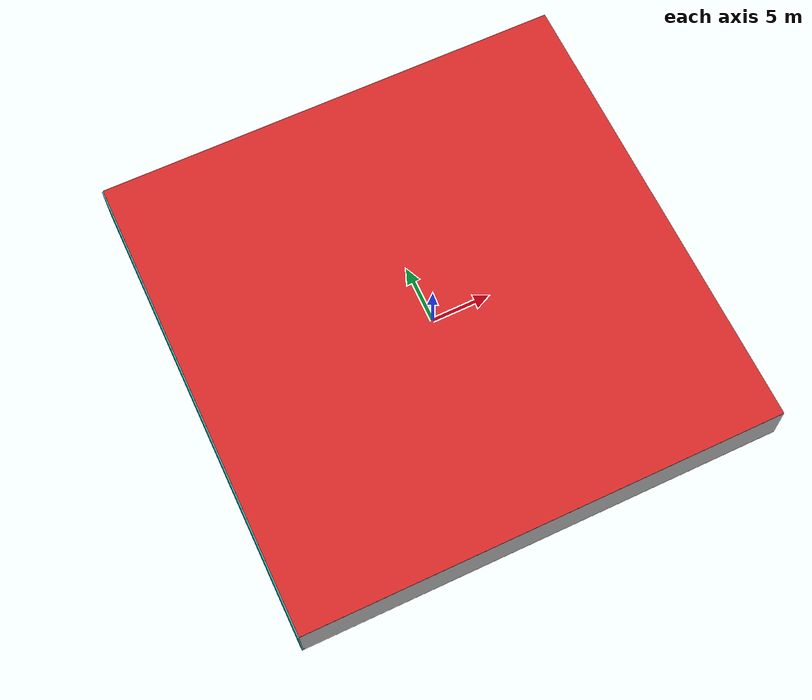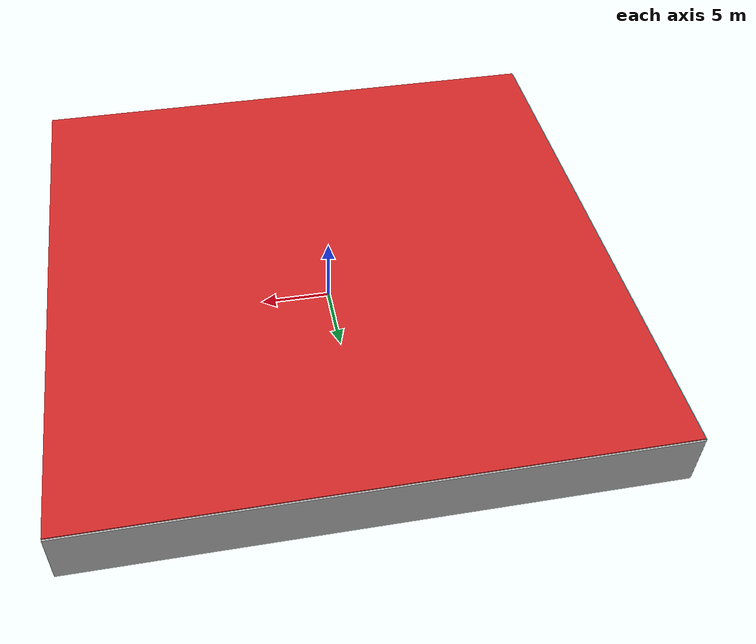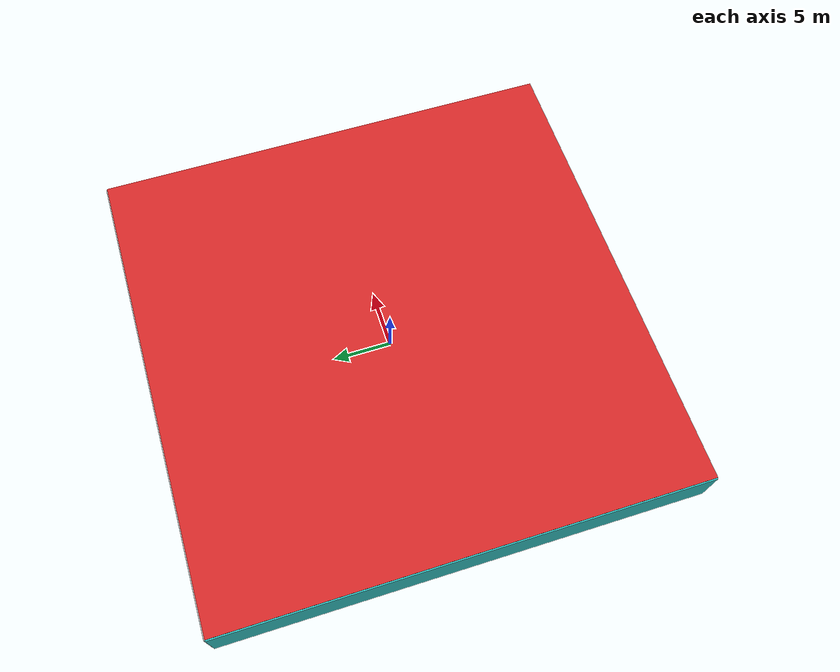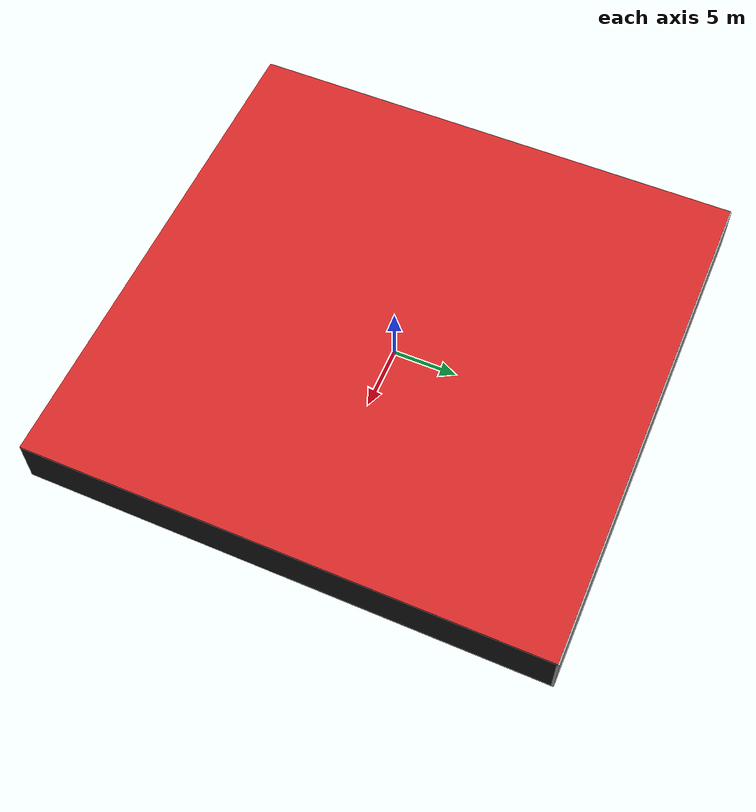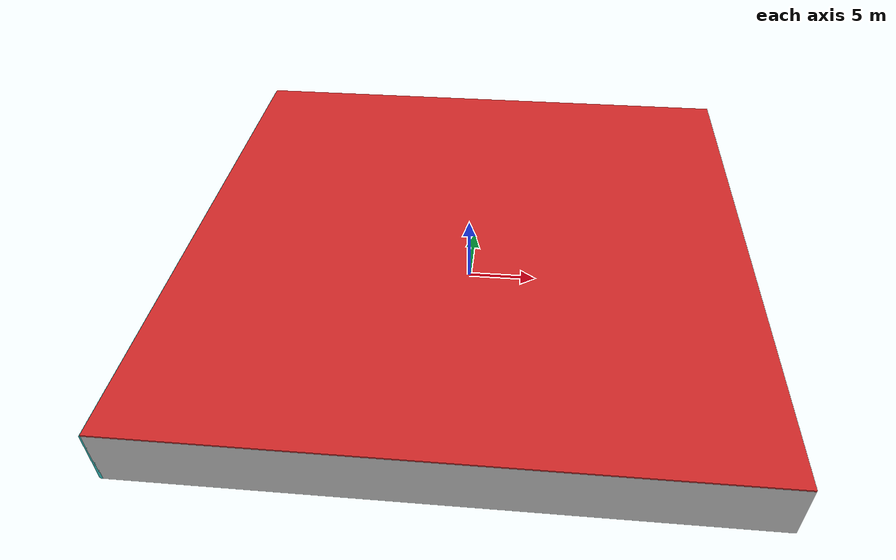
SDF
<sdf version="1.4">
 <world name="default">
  <physics type="ode">
   <max_step_size>0.001</max_step_size>
   <real_time_factor>1</real_time_factor>
   <real_time_update_rate>1000</real_time_update_rate>
   <gravity>0 0 -9.8</gravity>
  </physics>
  <scene><ambient>0.4 0.4 0.4 1</ambient><background>0.7 0.7 0.7 1</background><shadows>1</shadows></scene>
  <model name="Surrounding">
   <static>1</static>
   <link name="Ceiling">
    <collision name="Ceiling_Collision"><geometry><box><size>40 40 0.1</size></box></geometry></collision>
    <visual name="Ceiling_Visual">
     <geometry><box><size>40 40 0.1</size></box></geometry>
     <material>
      <script><uri>file://media/materials/scripts/gazebo.material</uri><name>Gazebo/Red</name></script>
     </material>
    </visual>
    <pose>0 0 4.05 0 0 0</pose>
   </link>
   <link name="Wall_South">
    <collision name="Wall_South_Collision">
     <geometry><box><size>40 0 4</size></box></geometry>
     <pose>0 0 2 0 -0 0</pose>
    </collision>
    <visual name="Wall_South_Visual">
     <pose>0 0 2 0 -0 0</pose>
     <geometry><box><size>40 0 4</size></box></geometry>
     <material>
      <script><uri>file://media/materials/scripts/gazebo.material</uri><name>Gazebo/JointAnchor</name></script>
     </material>
    </visual>
    <velocity_decay><linear>0</linear><angular>0</angular></velocity_decay>
    <pose>0 -20 0 0 -0 0</pose>
   </link>
   <link name="Wall_East">
    <collision name="Wall_21_Collision">
     <geometry><box><size>40 0 4</size></box></geometry>
     <pose>0 0 2 0 -0 0</pose>
    </collision>
    <visual name="Wall_21_Visual">
     <pose>0 0 2 0 -0 0</pose>
     <geometry><box><size>40 0 4</size></box></geometry>
     <material>
      <script><uri>file://media/materials/scripts/gazebo.material</uri><name>Gazebo/FlatBlack</name></script>
     </material>
    </visual>
    <velocity_decay><linear>0</linear><angular>0</angular></velocity_decay>
    <pose>20 0 0 0 -0 1.5708</pose>
   </link>
   <link name="Wall_North">
    <collision name="Wall_22_Collision">
     <geometry><box><size>40 0.2 4</size></box></geometry>
     <pose>0 0 2 0 -0 0</pose>
    </collision>
    <visual name="Wall_22_Visual">
     <pose>0 0 2 0 -0 0</pose>
     <geometry><box><size>40 0.2 4</size></box></geometry>
     <material>
      <script><uri>file://media/materials/scripts/gazebo.material</uri><name>Gazebo/LightOff</name></script>
     </material>
    </visual>
    <velocity_decay><linear>0</linear><angular>0</angular></velocity_decay>
    <pose>0 20 0 0 -0 0</pose>
   </link>
   <link name="Wall_West">
    <collision name="Wall_23_Collision">
     <geometry><box><size>40 0.2 4</size></box></geometry>
     <pose>0 0 2 0 -0 0</pose>
    </collision>
    <visual name="Wall_23_Visual">
     <pose>0 0 2 0 -0 0</pose>
     <geometry><box><size>40 0.2 4</size></box></geometry>
     <material>
      <script>
       <uri>file://media/materials/scripts/gazebo.material</uri>
       <name>Gazebo/TurquoiseGlowOutline</name>
      </script>
     </material>
    </visual>
    <velocity_decay><linear>0</linear><angular>0</angular></velocity_decay>
    <pose>-20 0 0 0 0 -1.5708</pose>
   </link>
   <link name="Ground_link">
    <collision name="collision">
     <pose>0 0 .05 0 -0 0</pose>
     <geometry><box><size>40 40 0.1</size></box></geometry>
    </collision>
    <visual name="visual">
     <pose>0 0 .05 0 -0 0</pose>
     <geometry><box><size>40 40 0.1</size></box></geometry>
     <material>
      <script><uri>file://media/materials/scripts/gazebo.material</uri><name>Gazebo/Grey</name></script>
     </material>
    </visual>
   </link>
   <static>1</static>
  </model>
  <spherical_coordinates>
   <surface_model>EARTH_WGS84</surface_model>
   <latitude_deg>0</latitude_deg>
   <longitude_deg>0</longitude_deg>
   <elevation>0</elevation>
   <heading_deg>0</heading_deg>
  </spherical_coordinates>
  <light name="lightball_0" type="diffuse">
   <diffuse>0.8 0.8 0.8 1</diffuse>
   <specular>0.2 0.2 0.2 1</specular>
   <attenuation>
    <range>100</range>
    <constant>0.7</constant>
    <linear>0.01</linear>
    <quadratic>0.001</quadratic>
   </attenuation>
   <direction>-0.5 0.1 -0.9</direction>
   <pose>-0.742402299967 15.4009297486 3.54484908438 0 0 0</pose>
  </light>
  <light name="lightball_1" type="diffuse">
   <diffuse>0.8 0.8 0.8 1</diffuse>
   <specular>0.2 0.2 0.2 1</specular>
   <attenuation>
    <range>100</range>
    <constant>0.7</constant>
    <linear>0.01</linear>
    <quadratic>0.001</quadratic>
   </attenuation>
   <direction>-0.5 0.1 -0.9</direction>
   <pose>16.5936502336 16.498094761 3.64953238155 0 0 0</pose>
  </light>
  <include><uri>model://table</uri><pose>-18.6572940642 -6.35793067369 0 0 0 1.09423737342</pose></include>
  <include>
   <uri>model://textured_shapes</uri>
   <pose>-15.1669818446 -3.31835575601 0 0 0 0.621634670195</pose>
  </include>
  <include>
   <uri>model://textured_shapes</uri>
   <pose>-11.5440166513 0.552846797161 0 0 0 0.240110954982</pose>
  </include>
  <include>
   <uri>model://textured_shapes</uri>
   <pose>-6.37046903393 -8.70543420501 0 0 0 2.67084180688</pose>
  </include>
  <include>
   <uri>model://robocup_3Dsim_goal</uri>
   <pose>-1.50325448112 -8.03146844038 0 0 0 1.62837702801</pose>
  </include>
  <include><uri>model://cabinet</uri><pose>-3.51387004942 -6.60836766695 0 0 0 1.03269202416</pose></include>
  <include><uri>model://table</uri><pose>-2.04685749535 -1.88045378319 0 0 0 2.13075936098</pose></include>
  <include>
   <uri>model://textured_shapes</uri>
   <pose>-1.45000837316 10.2237295833 0 0 0 1.57166674894</pose>
  </include>
  <include><uri>model://table</uri><pose>1.06826887915 -1.75449631747 0 0 0 1.17302344256</pose></include>
  <include><uri>model://table</uri><pose>1.56896445416 3.58603190421 0 0 0 1.57142236852</pose></include>
  <include><uri>model://cabinet</uri><pose>2.64724030367 15.8291673363 0 0 0 1.64368890714</pose></include>
  <include><uri>model://cabinet</uri><pose>8.62542976888 -12.2489681654 0 0 0 2.2652505513</pose></include>
  <include><uri>model://cabinet</uri><pose>9.22116020785 -6.33732306356 0 0 0 0.646987477374</pose></include>
  <include><uri>model://cabinet</uri><pose>8.63013501613 2.92698453271 0 0 0 0.0452482406669</pose></include>
  <include><uri>model://table</uri><pose>13.2153646184 0.351681457789 0 0 0 0.423969570199</pose></include>
  <include>
   <uri>model://construction_cone</uri>
   <pose>11.7472862762 6.96241440149 0 0 0 0.985397241175</pose>
  </include>
  <include>
   <uri>model://robocup_3Dsim_goal</uri>
   <pose>15.4558889176 -14.2504647904 0 0 0 2.47535782295</pose>
  </include>
  <include>
   <uri>model://textured_shapes</uri>
   <pose>15.6298135008 6.76755565846 0 0 0 1.42478229217</pose>
  </include>
  <include><uri>model://cabinet</uri><pose>15.6756827662 14.8884774214 0 0 0 1.99346518277</pose></include>
  <include>
   <uri>model://robocup_3Dsim_goal</uri>
   <pose>18.6154944484 -11.6877818817 0 0 0 0.72502678592</pose>
  </include>
 </world>
</sdf>

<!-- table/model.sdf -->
<sdf version="1.5">
  <model name="table">
    <static>true</static>
    <link name="link">
      <collision name="surface">
        <pose>0 0 1.0 0 0 0</pose>
        <geometry>
          <box>
            <size>1.5 0.8 0.03</size>
          </box>
        </geometry>
        <surface>
          <friction>
            <ode>
              <mu>0.6</mu>
              <mu2>0.6</mu2>
            </ode>
          </friction>
        </surface>
      </collision>
      <visual name="visual1">
        <pose>0 0 1.0 0 0 0</pose>
        <geometry>
          <box>
            <size>1.5 0.8 0.03</size>
          </box>
        </geometry>
        <material>
          <script>
            <uri>model://media/materials/scripts/gazebo.material</uri>
            <name>Gazebo/Wood</name>
          </script>
        </material>
      </visual>
      <collision name="front_left_leg">
        <pose>0.68 0.38 0.5 0 0 0</pose>
        <geometry>
          <cylinder>
            <radius>0.02</radius>
            <length>1.0</length>
          </cylinder>
        </geometry>
      </collision>
      <visual name="front_left_leg">
        <pose>0.68 0.38 0.5 0 0 0</pose>
        <geometry>
          <cylinder>
            <radius>0.02</radius>
            <length>1.0</length>
          </cylinder>
        </geometry>
        <material>
          <script>
            <uri>model://media/materials/scripts/gazebo.material</uri>
            <name>Gazebo/Grey</name>
          </script>
        </material>
      </visual>
      <collision name="front_right_leg">
        <pose>0.68 -0.38 0.5 0 0 0</pose>
        <geometry>
          <cylinder>
            <radius>0.02</radius>
            <length>1.0</length>
          </cylinder>
        </geometry>
      </collision>
      <visual name="front_right_leg">
        <pose>0.68 -0.38 0.5 0 0 0</pose>
        <geometry>
          <cylinder>
            <radius>0.02</radius>
            <length>1.0</length>
          </cylinder>
        </geometry>
        <material>
          <script>
            <uri>model://media/materials/scripts/gazebo.material</uri>
            <name>Gazebo/Grey</name>
          </script>
        </material>
      </visual>
      <collision name="back_right_leg">
        <pose>-0.68 -0.38 0.5 0 0 0</pose>
        <geometry>
          <cylinder>
            <radius>0.02</radius>
            <length>1.0</length>
          </cylinder>
        </geometry>
      </collision>
      <visual name="back_right_leg">
        <pose>-0.68 -0.38 0.5 0 0 0</pose>
        <geometry>
          <cylinder>
            <radius>0.02</radius>
            <length>1.0</length>
          </cylinder>
        </geometry>
        <material>
          <script>
            <uri>model://media/materials/scripts/gazebo.material</uri>
            <name>Gazebo/Grey</name>
          </script>
        </material>
      </visual>
      <collision name="back_left_leg">
        <pose>-0.68 0.38 0.5 0 0 0</pose>
        <geometry>
          <cylinder>
            <radius>0.02</radius>
            <length>1.0</length>
          </cylinder>
        </geometry>
      </collision>
      <visual name="back_left_leg">
        <pose>-0.68 0.38 0.5 0 0 0</pose>
        <geometry>
          <cylinder>
            <radius>0.02</radius>
            <length>1.0</length>
          </cylinder>
        </geometry>
        <material>
          <script>
            <uri>model://media/materials/scripts/gazebo.material</uri>
            <name>Gazebo/Grey</name>
          </script>
        </material>
      </visual>
    </link>
  </model>
</sdf>

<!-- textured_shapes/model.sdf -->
<sdf version="1.6">
  <model name="textured_shapes">
    <pose>0 0 0.5 0 0 0</pose>
    <link name="box">
      <pose>0 -1.5 0 0 0 0</pose>
      <collision name="collision">
        <geometry>
          <box>
            <size>1 1 1</size>
          </box>
        </geometry>
      </collision>
      <visual name="visual">
        <geometry>
          <box>
            <size>1 1 1</size>
          </box>
        </geometry>
        <material>
          <script>
            <uri>model://../model_source/models/textured_shapes/materials/scripts</uri>
            <uri>model://../model_source/models/textured_shapes/materials/textures</uri>
            <name>TexturedShape/Squares</name>
          </script>
        </material>
      </visual>
    </link>
    <link name="sphere">
      <collision name="collision">
        <geometry>
          <sphere>
            <radius>0.5</radius>
          </sphere>
        </geometry>
      </collision>
      <visual name="visual">
        <geometry>
          <sphere>
            <radius>0.5</radius>
          </sphere>
        </geometry>
        <material>
          <script>
            <uri>model://../model_source/models/textured_shapes/materials/scripts</uri>
            <uri>model://../model_source/models/textured_shapes/materials/textures</uri>
            <name>TexturedShape/Squares</name>
          </script>
        </material>
      </visual>
    </link>
    <link name="cylinder">
      <pose>0 1.5 0 0 0 0</pose>
      <collision name="collision">
        <geometry>
          <cylinder>
            <radius>0.5</radius>
            <length>1</length>
          </cylinder>
        </geometry>
      </collision>
      <visual name="visual">
        <geometry>
          <cylinder>
            <radius>0.5</radius>
            <length>1</length>
          </cylinder>
        </geometry>
        <material>
          <script>
            <uri>model://../model_source/models/textured_shapes/materials/scripts</uri>
            <uri>model://../model_source/models/textured_shapes/materials/textures</uri>
            <name>TexturedShape/Squares</name>
          </script>
        </material>
      </visual>
    </link>
  </model>
</sdf>

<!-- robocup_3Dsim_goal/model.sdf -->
<sdf version="1.5">
  <model name="robocup_3d_goal">
    <static>true</static>
    <link name="left_post">
      <pose>0 1.05 0.45 0 0 0</pose>
      <collision name="collision">
        <geometry>
          <cylinder>
            <radius>0.05</radius>
            <length>0.9</length>
          </cylinder>
        </geometry>
      </collision>
      <visual name="visual">
        <geometry>
          <cylinder>
            <radius>0.05</radius>
            <length>0.9</length>
          </cylinder>
        </geometry>
        <material>
          <script>
            <uri>file://media/materials/scripts/gazebo.material</uri>
            <name>Gazebo/ZincYellow</name>
          </script>
        </material>
      </visual>
    </link>
    <link name="left_support_horiz_lower">
      <pose>0.30 1.05 0.01 0 0 0</pose>
      <collision name="collision">
        <geometry>
          <box>
            <size>0.50 0.02 0.02</size>
          </box>
        </geometry>
      </collision>
      <visual name="visual">
        <geometry>
          <box>
            <size>0.50 0.02 0.02</size>
          </box>
        </geometry>
        <material>
          <script>
            <uri>file://media/materials/scripts/gazebo.material</uri>
            <name>Gazebo/White</name>
          </script>
        </material>
      </visual>
    </link>
    <link name="left_support_horiz_upper">
      <pose>0.30 1.05 0.79 0 0 0</pose>
      <collision name="collision">
        <geometry>
          <box>
            <size>0.50 0.02 0.02</size>
          </box>
        </geometry>
      </collision>
      <visual name="visual">
        <geometry>
          <box>
            <size>0.50 0.02 0.02</size>
          </box>
        </geometry>
        <material>
          <script>
            <uri>file://media/materials/scripts/gazebo.material</uri>
            <name>Gazebo/White</name>
          </script>
        </material>
      </visual>
    </link>
    <link name="left_support_vertical">
      <pose>0.56 1.05 0.4 0 1.5708 0</pose>
      <collision name="collision">
        <geometry>
          <box>
            <size>0.80 0.02 0.02</size>
          </box>
        </geometry>
      </collision>
      <visual name="visual">
        <geometry>
          <box>
            <size>0.80 0.02 0.02</size>
          </box>
        </geometry>
        <material>
          <script>
            <uri>file://media/materials/scripts/gazebo.material</uri>
            <name>Gazebo/White</name>
          </script>
        </material>
      </visual>
    </link>
    <link name="right_support_horiz_lower">
      <pose>0.30 -1.05 0.01 0 0 0</pose>
      <collision name="collision">
        <geometry>
          <box>
            <size>0.50 0.02 0.02</size>
          </box>
        </geometry>
      </collision>
      <visual name="visual">
        <geometry>
          <box>
            <size>0.50 0.02 0.02</size>
          </box>
        </geometry>
        <material>
          <script>
            <uri>file://media/materials/scripts/gazebo.material</uri>
            <name>Gazebo/White</name>
          </script>
        </material>
      </visual>
    </link>
    <link name="right_support_horiz_upper">
      <pose>0.30 -1.05 0.79 0 0 0</pose>
      <collision name="collision">
        <geometry>
          <box>
            <size>0.50 0.02 0.02</size>
          </box>
        </geometry>
      </collision>
      <visual name="visual">
        <geometry>
          <box>
            <size>0.50 0.02 0.02</size>
          </box>
        </geometry>
        <material>
          <script>
            <uri>file://media/materials/scripts/gazebo.material</uri>
            <name>Gazebo/White</name>
          </script>
        </material>
      </visual>
    </link>
    <link name="right_support_vertical">
      <pose>0.56 -1.05 0.4 0 1.5708 0</pose>
      <collision name="collision">
        <geometry>
          <box>
            <size>0.80 0.02 0.02</size>
          </box>
        </geometry>
      </collision>
      <visual name="visual">
        <geometry>
          <box>
            <size>0.80 0.02 0.02</size>
          </box>
        </geometry>
        <material>
          <script>
            <uri>file://media/materials/scripts/gazebo.material</uri>
            <name>Gazebo/White</name>
          </script>
        </material>
      </visual>
    </link>
    <link name="center_support_horiz_lower">
      <pose>0.56 0 0.01 0 1.5708 0</pose>
      <collision name="collision">
        <geometry>
          <box>
            <size>0.02 2.08 0.02</size>
          </box>
        </geometry>
      </collision>
      <visual name="visual">
        <geometry>
          <box>
            <size>0.02 2.08 0.02</size>
          </box>
        </geometry>
        <material>
          <script>
            <uri>file://media/materials/scripts/gazebo.material</uri>
            <name>Gazebo/White</name>
          </script>
        </material>
      </visual>
    </link>
    <link name="center_support_horiz_upper">
      <pose>0.56 0 0.79 0 1.5708 0</pose>
      <collision name="collision">
        <geometry>
          <box>
            <size>0.02 2.08 0.02</size>
          </box>
        </geometry>
      </collision>
      <visual name="visual">
        <geometry>
          <box>
            <size>0.02 2.08 0.02</size>
          </box>
        </geometry>
        <material>
          <script>
            <uri>file://media/materials/scripts/gazebo.material</uri>
            <name>Gazebo/White</name>
          </script>
        </material>
      </visual>
    </link>
    <link name="right_post">
      <pose>0 -1.05 0.45 0 0 0</pose>
      <collision name="collision">
        <geometry>
          <cylinder>
            <radius>0.05</radius>
            <length>0.9</length>
          </cylinder>
        </geometry>
      </collision>
      <visual name="visual">
        <geometry>
          <cylinder>
            <radius>0.05</radius>
            <length>0.9</length>
          </cylinder>
        </geometry>
        <material>
          <script>
            <uri>file://media/materials/scripts/gazebo.material</uri>
            <name>Gazebo/ZincYellow</name>
          </script>
        </material>
      </visual>
    </link>
    <link name="crossbar">
      <pose>0 0 0.85 1.57 1.57 0</pose>
      <collision name="collision">
        <geometry>
          <cylinder>
            <radius>0.05</radius>
            <length>2.0</length>
          </cylinder>
        </geometry>
      </collision>
      <visual name="visual">
        <geometry>
          <cylinder>
            <radius>0.05</radius>
            <length>2.0</length>
          </cylinder>
        </geometry>
        <material>
          <script>
            <uri>file://media/materials/scripts/gazebo.material</uri>
            <name>Gazebo/ZincYellow</name>
          </script>
        </material>
      </visual>
    </link>
    <link name="center_net">
      <pose>0.56 0 0.40 0 0 0</pose>
      <collision name="collision">
        <geometry>
          <box>
            <size>0.01 2.1 0.80</size>
          </box>
        </geometry>
      </collision>
      <visual name="visual">
        <geometry>
          <box>
            <size>0.01 2.1 0.80</size>
          </box>
        </geometry>
        <material>
          <script>
            <uri>model://../model_source/models/robocup09_spl_field/materials/scripts/</uri>
            <uri>model://../model_source/models/robocup09_spl_field/materials/textures/</uri>
            <name>RoboCup/Net</name>
          </script>
        </material>
      </visual>
    </link>
    <link name="left_net">
      <pose>0.30 1.05 0.40 0 0 0</pose>
      <collision name="collision">
        <geometry>
          <box>
            <size>0.50 0.01 0.76</size>
          </box>
        </geometry>
      </collision>
      <visual name="visual">
        <geometry>
          <box>
            <size>0.50 0.01 0.76</size>
          </box>
        </geometry>
        <material>
          <script>
            <uri>model://../model_source/models/robocup09_spl_field/materials/scripts/</uri>
            <uri>model://../model_source/models/robocup09_spl_field/materials/textures/</uri>
            <name>RoboCup/Net</name>
          </script>
        </material>
      </visual>
    </link>
    <link name="right_net">
      <pose>0.30 -1.05 0.40 0 0 0</pose>
      <collision name="collision">
        <geometry>
          <box>
            <size>0.50 0.01 0.76</size>
          </box>
        </geometry>
      </collision>
      <visual name="visual">
        <geometry>
          <box>
            <size>0.50 0.01 0.76</size>
          </box>
        </geometry>
        <material>
          <script>
            <uri>model://../model_source/models/robocup09_spl_field/materials/scripts/</uri>
            <uri>model://../model_source/models/robocup09_spl_field/materials/textures/</uri>
            <name>RoboCup/Net</name>
          </script>
        </material>
      </visual>
    </link>
  </model>
</sdf>

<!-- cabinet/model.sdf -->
<sdf version="1.5">
  <model name="cabinet">
    <static>true</static>
    <link name="cabinet_bottom_plate">
      <inertial>
        <pose>0 0 -1 0 0 0</pose>
        <inertia>
          <ixx>2.050000</ixx>
          <ixy>0</ixy>
          <ixz>0</ixz>
          <iyy>2.050000</iyy>
          <iyz>0</iyz>
          <izz>2.050000</izz>
        </inertia>
        <mass>25.000000</mass>
      </inertial>
      <collision name="cabinet_bottom_plate_geom">
        <pose>0 0 0.010000 0 0 0</pose>
        <geometry>
          <box>
            <size>0.450000 0.450000 0.020000</size>
          </box>
        </geometry>
      </collision>
      <visual name="cabinet_bottom_plate_geom_visual">
        <pose>0 0 0.010000 0 0 0</pose>
        <geometry>
          <box>
            <size>0.450000 0.450000 0.020000</size>
          </box>
        </geometry>
        <material>
          <script>
            <uri>model://media/materials/scripts/gazebo.material</uri>
            <name>Gazebo/Wood</name>
          </script>
        </material>
      </visual>
      <collision name="cabinet_bottom_plate_geom_cabinet_back_plate">
        <pose>0.235000 0 0.510000 0 0 0</pose>
        <geometry>
          <box>
            <size>0.020000 0.450000 1.020000</size>
          </box>
        </geometry>
      </collision>
      <visual name="cabinet_bottom_plate_geom_cabinet_back_plate_visual">
        <pose>0.235000 0 0.510000 0 0 0</pose>
        <geometry>
          <box>
            <size>0.020000 0.450000 1.020000</size>
          </box>
        </geometry>
        <material>
          <script>
            <uri>model://media/materials/scripts/gazebo.material</uri>
            <name>Gazebo/Wood</name>
          </script>
        </material>
      </visual>
      <collision name="cabinet_bottom_plate_geom_cabinet_left_plate">
        <pose>0 0.235000 0.510000 0 0 0</pose>
        <geometry>
          <box>
            <size>0.450000 0.020000 1.020000</size>
          </box>
        </geometry>
      </collision>
      <visual name="cabinet_bottom_plate_geom_cabinet_left_plate_visual">
        <pose>0 0.235000 0.510000 0 0 0</pose>
        <geometry>
          <box>
            <size>0.450000 0.020000 1.020000</size>
          </box>
        </geometry>
        <material>
          <script>
            <uri>model://media/materials/scripts/gazebo.material</uri>
            <name>Gazebo/Wood</name>
          </script>
        </material>
      </visual>
      <collision name="cabinet_bottom_plate_geom_cabinet_middle_plate">
        <pose>0 0 0.510000 0 0 0</pose>
        <geometry>
          <box>
            <size>0.450000 0.450000 0.020000</size>
          </box>
        </geometry>
      </collision>
      <visual name="cabinet_bottom_plate_geom_cabinet_middle_plate_visual">
        <pose>0 0 0.510000 0 0 0</pose>
        <geometry>
          <box>
            <size>0.450000 0.450000 0.020000</size>
          </box>
        </geometry>
        <material>
          <script>
            <uri>model://media/materials/scripts/gazebo.material</uri>
            <name>Gazebo/Wood</name>
          </script>
        </material>
      </visual>
      <collision name="cabinet_bottom_plate_geom_cabinet_right_plate">
        <pose>0 -0.235000 0.510000 0 0 0</pose>
        <geometry>
          <box>
            <size>0.450000 0.020000 1.020000</size>
          </box>
        </geometry>
      </collision>
      <visual name="cabinet_bottom_plate_geom_cabinet_right_plate_visual">
        <pose>0 -0.235000 0.510000 0 0 0</pose>
        <geometry>
          <box>
            <size>0.450000 0.020000 1.020000</size>
          </box>
        </geometry>
        <material>
          <script>
            <uri>model://media/materials/scripts/gazebo.material</uri>
            <name>Gazebo/Wood</name>
          </script>
        </material>
      </visual>
      <collision name="cabinet_bottom_plate_geom_cabinet_top_plate">
        <pose>0 0 1.010000 0 0 0</pose>
        <geometry>
          <box>
            <size>0.450000 0.450000 0.020000</size>
          </box>
        </geometry>
      </collision>
      <visual name="cabinet_bottom_plate_geom_cabinet_top_plate_visual">
        <pose>0 0 1.010000 0 0 0</pose>
        <geometry>
          <box>
            <size>0.450000 0.450000 0.020000</size>
          </box>
        </geometry>
        <material>
          <script>
            <uri>model://media/materials/scripts/gazebo.material</uri>
            <name>Gazebo/Wood</name>
          </script>
        </material>
      </visual>
    </link>
  </model>
</sdf>

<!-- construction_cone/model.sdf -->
<sdf version="1.5">
  <model name="Construction Cone">
    <link name="link">
      <collision name="collision">
        <geometry>
          <mesh>
            <scale>10 10 10</scale>
            <uri>file://isr-testbed/construction_cone/meshes/construction_cone.dae</uri>
          </mesh>
        </geometry>
      </collision>
      <visual name="visual">
        <geometry>
          <mesh>
            <scale>10 10 10</scale>
            <uri>file://isr-testbed/construction_cone/meshes/construction_cone.dae</uri>
          </mesh>
        </geometry>
      </visual>
    </link>
  </model>
</sdf>
